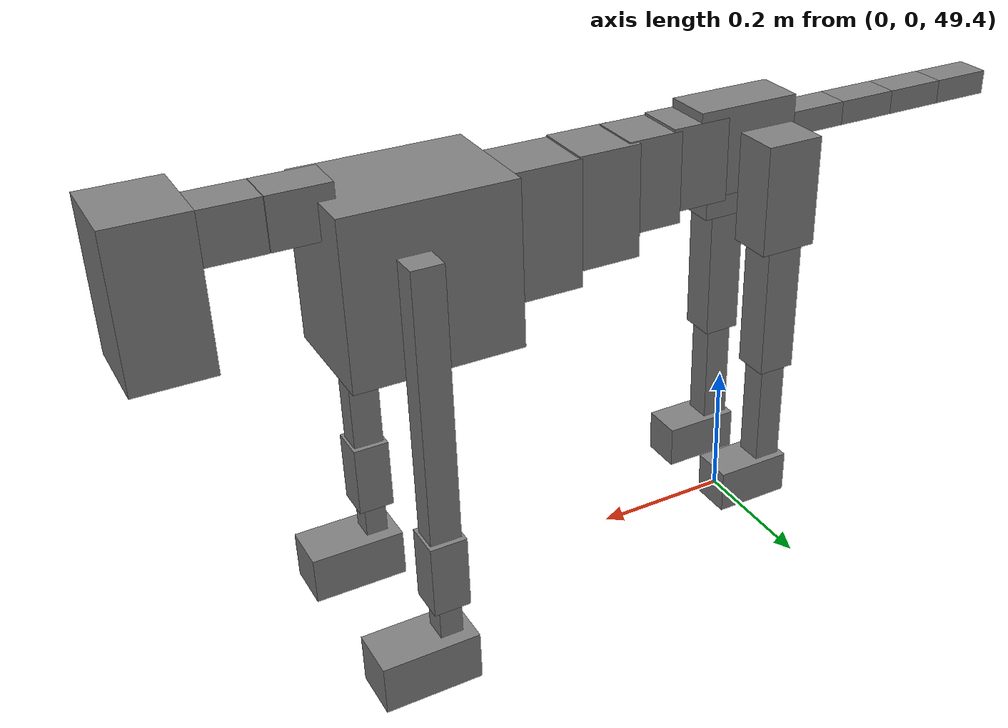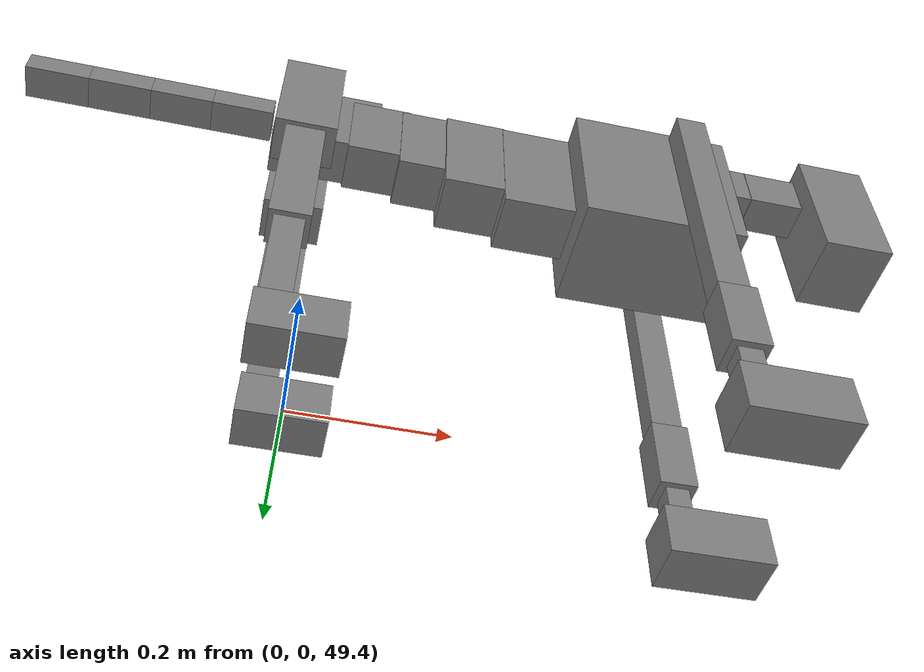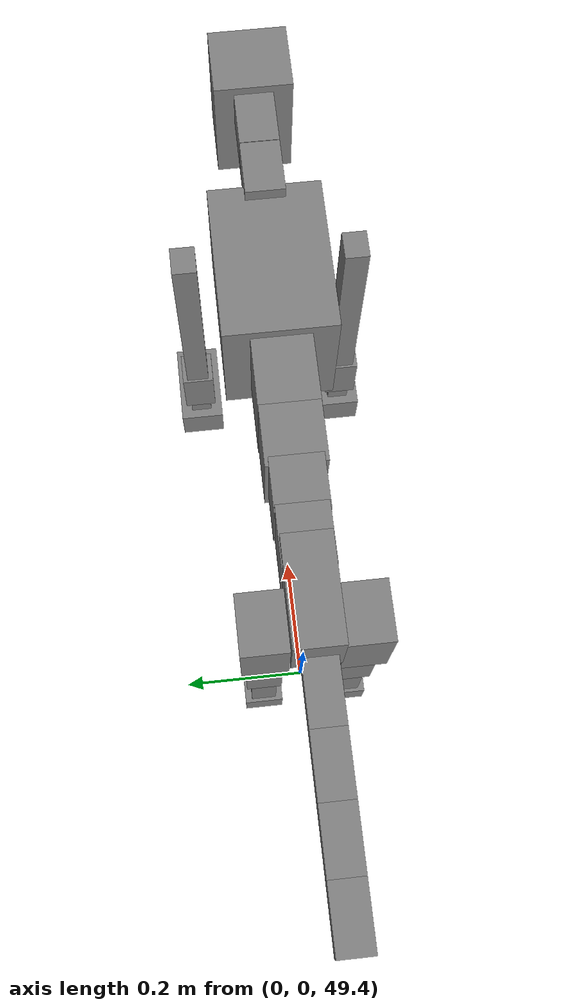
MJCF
<mujoco model="dog">

    <default>
        <joint armature="0.02" stiffness="1" damping="0.2" limited="true"/>
        <geom condim="3" friction="1 0.05 0.05" margin="0.01"/>
        <motor ctrllimited="true" ctrlrange="-1.0 1.0" forcelimited="true" gear="50"/>
    </default>

    <compiler inertiafromgeom="true" angle="radian"/>

    <option timestep="0.016" iterations="50" tolerance="1e-10" solver="Newton" jacobian="dense" cone="pyramidal"/>

    <size nconmax="20000" njmax="60000" nstack="5000000"/>
    <visual>
        <map force="0.1" zfar="30"/>
        <rgba haze="0.15 0.25 0.35 1"/>
        <quality shadowsize="2048"/>
        <global offwidth="800" offheight="800"/>
    </visual>

    <asset>
        <texture type="skybox" builtin="gradient" rgb1="0.3 0.5 0.7" rgb2="0 0 0" width="512" height="512"/>
        <texture name="texplane" type="2d" builtin="checker" rgb1=".2 .3 .4" rgb2=".1 0.15 0.2" width="512" height="512"
                 mark="cross" markrgb=".8 .8 .8"/>
        <texture name="texgeom" type="cube" builtin="flat" mark="cross" width="127" height="1278" rgb1="0.8 0.6 0.4"
                 rgb2="0.8 0.6 0.4" markrgb="1 1 1" random="0.01"/>

        <material name="matplane" reflectance="0.3" texture="texplane" texrepeat="1 1" texuniform="true"/>
        <material name="matgeom" texture="texgeom" texuniform="true" rgba="0.8 0.6 .4 1"/>
    </asset>

    <worldbody>
        <geom name="floor" pos="0 0 0" size="0 0 .25" type="plane" material="matplane" condim="3"/>

        <light directional="false" diffuse=".2 .2 .2" specular="0 0 0" pos="0 0 5" dir="0 0 -1" castshadow="false"/>
        <light mode="targetbodycom" target="torso" directional="false" diffuse=".8 .8 .8" specular="0.3 0.3 0.3"
               pos="0 0 4.0" dir="0 0 -1"/>

        <body name="root" pos="0 0 50">
            <freejoint name="root_1"/>
            <geom type="box" pos="0 0 -0.02" size="0.0774  0.0358  0.063" density="2030"/>

            <body name="spine1" pos="0.054 0 0">
                <joint name="spine1_y" axis="0 1 0" range="0 0.7" limited="true"/>
                <geom type="box" pos="0.02375 0 -0.03" size="0.04375  0.0375  0.05985" density="2030"/>

                <body name="spine2" pos="0.0612 0 0">
                    <joint name="spine2_y" axis="0 1 0" range="-0.15 0.15" limited="true"/>
                    <geom type="box" pos="0.03555  0  -0.04" size="0.04055  0.039  0.06615" density="2030"/>

                    <body name="spine3" pos="0.0730 0 0">
                        <joint name="spine3_y" axis="0 1 0" range="-0.15 0.15" limited="true"/>
                        <geom type="box" pos="0.03555  0  -0.057" size="0.04555  0.0445  0.081" density="2030"/>

                        <body name="spine4" pos="0.0780 0 0">
                            <joint name="spine4_y" axis="0 1 0" range="-0.15 0.15" limited="true"/>
                            <geom type="box" pos="0.05265  0  -0.07" size="0.05265  0.045  0.09135" density="2030"/>

                            <body name="torso" pos="0.1082 0 0">
                                <joint name="torso_y" axis="0 1 0" range="-0.15 0.15" limited="true"/>
                                <geom type="box" pos="0.11925  0  -0.085" size="0.11925  0.085  0.11745"
                                      density="2030"/>

                                <body name="neck1" pos="0.2160  0   0.0180">
                                    <joint name="neck1_y" axis="0 1 0" range="-1.2  -1" limited="true"/>
                                    <geom type="box" pos="0.0423  0  0" size="0.0423  0.03  0.036" density="2325"/>

                                    <body name="neck2" pos="0.0853  0  0">
                                        <joint name="neck2_y" axis="0 1 0" range="0.1  0" limited="true"/>
                                        <geom type="box" pos="0.0423  0  0" size="0.0423  0.03  0.036" density="2325"/>

                                        <body name="head" pos="0.0853  0  0">
                                            <joint name="head_y" axis="0 1 0" range="-0.3  -0.2" limited="true"/>
                                            <geom type="box" pos="0.0531  0  -0.055" size="0.0531  0.06  0.1044"
                                                  density="4030"/>

                                        </body>
                                    </body>
                                </body>

                                <body name="front_shoulder" pos="0.156  0   -0.0480">
                                    <joint name="front_shoulder_y" axis="0 1 0" range="-1 1.5" limited="true"/>
                                    <geom type="box" pos="0 0.13 -0.1835" size="0.0221  0.0189  0.2101" density="1158"/>
                                    <geom type="box" pos="0 -0.13 -0.1835" size="0.0221  0.0189  0.2101"
                                          density="1158"/>

                                    <body name="front_elbow" pos="0  0  -0.3669">
                                        <joint name="front_elbow_y" axis="0 1 0" range="-2 0" limited="true"/>
                                        <geom type="box" pos="0 0.13 -0.0537" size="0.0262  0.0268  0.0537"
                                              density="1081"/>
                                        <geom type="box" pos="0 -0.13 -0.0537" size="0.0262  0.0268  0.0537"
                                              density="1081"/>

                                        <body name="front_wrist" pos="0  0  -0.1074">
                                            <joint name="front_wrist_y" axis="0 1 0" range="-0.2 0" limited="true"/>
                                            <geom type="box" pos="0 0.13 -0.0318" size="0.0163  0.0181  0.0450"
                                                  density="1664"/>
                                            <geom type="box" pos="0 -0.13 -0.0318" size="0.0163  0.0181  0.0450"
                                                  density="1664"/>

                                            <body name="front_finger_end" pos="0  0  -0.0637">
                                                <joint name="front_finger_y" axis="0 1 0" range="-0.4 1"
                                                       limited="true"/>
                                                <geom type="box" pos="0.0382  0.13  -0.0215"
                                                      size="0.0701  0.0382  0.0365" density="1515"/>
                                                <geom type="box" pos="0.0382  -0.13  -0.0215"
                                                      size="0.0701  0.0382  0.0365" density="1515"/>

                                            </body>

                                        </body>
                                    </body>
                                </body>

                            </body>
                        </body>
                    </body>
                </body>
            </body>

            <body name="back_hip" pos="-0.03 0 -0.018">
                <joint name="back_hip_y" axis="0 1 0" range="-1.5 0.3" limited="true"/>
                <geom type="box" pos="0 0.07 -0.0570" size="0.0429  0.0336  0.0798" density="1154"/>
                <geom type="box" pos="0 -0.07 -0.0570" size="0.0429  0.0336  0.0798" density="1154"/>

                <body name="back_knee" pos="0  0  -0.1141">
                    <joint name="back_knee_y" axis="0 1 0" range="0 2.8" limited="true"/>
                    <geom type="box" pos="0 0.07 -0.1018" size="0.0276  0.0272  0.1173" density="1227"/>
                    <geom type="box" pos="0 -0.07 -0.1018" size="0.0276  0.0272  0.1173" density="1227"/>

                    <body name="back_ankle" pos="0  0  -0.2035">
                        <joint name="back_ankle_y" axis="0 1 0" range="-2.2 0" limited="true"/>
                        <geom type="box" pos="0 0.07 -0.0931" size="0.0201  0.0201  0.1044" density="1284"/>
                        <geom type="box" pos="0 -0.07 -0.0931" size="0.0201  0.0201  0.1044" density="1284"/>

                        <body name="back_toe_end" pos="0  0  -0.1862">
                            <joint name="back_toe_y" axis="0 1 0" range="-0.4 1" limited="true"/>
                            <geom type="box" pos="0.0310  0.07  -0.0171" size="0.0568  0.0310  0.0321" density="1515"/>
                            <geom type="box" pos="0.0310  -0.07  -0.0171" size="0.0568  0.0310  0.0321" density="1515"/>

                        </body>
                    </body>
                </body>
            </body>

            <body name="tail1" pos="-0.074 0 -0.006">
                <joint name="tail1_y" axis="0 1 0" range="-0.2 0.2" limited="true"/>
                <geom type="box" pos="-0.0536  0  0" size="0.045  0.025  0.0175" density="1587"/>

                <body name="tail2" pos="-0.09 0 0">
                    <joint name="tail2_y" axis="0 1 0" range="-0.2 0.2" limited="true"/>
                    <geom type="box" pos="-0.0536  0  0" size="0.045  0.025  0.0175" density="1587"/>

                    <body name="tail3" pos="-0.09 0 0">
                        <joint name="tail3_y" axis="0 1 0" range="-0.2 0.2" limited="true"/>
                        <geom type="box" pos="-0.0536  0  0" size="0.045  0.025  0.0175" density="1587"/>

                        <body name="tail4" pos="-0.09 0 0">
                            <joint name="tail4_y" axis="0 1 0" range="-0.2 0.2" limited="true"/>
                            <geom type="box" pos="-0.0536  0  0" size="0.045  0.025  0.0175" density="1587"/>

                        </body>
                    </body>
                </body>
            </body>
        </body>
    </worldbody>

    <actuator>
        <motor joint="spine1_y" forcerange="-150 150     "/>
        <motor joint="spine2_y" forcerange="-150 150     "/>
        <motor joint="spine3_y" forcerange="-150 150     "/>
        <motor joint="spine4_y" forcerange="-150 150     "/>
        <motor joint="torso_y" forcerange="-150 150     "/>
        <motor joint="neck1_y" forcerange="-100 100       "/>
        <motor joint="neck2_y" forcerange="-100 100       "/>
        <motor joint="head_y" forcerange="-150 150       "/>
        <motor joint="front_shoulder_y" forcerange="-103.12 123.08"/>
        <motor joint="front_elbow_y" forcerange="-122.95 171.81"/>
        <motor joint="front_wrist_y" forcerange="-74.85 70.31"/>
        <motor joint="front_finger_y" forcerange="-88.86 74.99"/>
        <motor joint="back_hip_y" forcerange="-317.15 331.43"/>
        <motor joint="back_knee_y" forcerange="-383.06 212.99"/>
        <motor joint="back_angle_y" forcerange="-91.43 130.32"/>
        <motor joint="back_toe_y" forcerange="-73.20 94.45"/>
        <motor joint="tail1_y" forcerange="-50 50     "/>
        <motor joint="tail2_y" forcerange="-50 50     "/>
        <motor joint="tail3_y" forcerange="-50 50     "/>
        <motor joint="tail4_y" forcerange="-50 50     "/>
    </actuator>
</mujoco>
